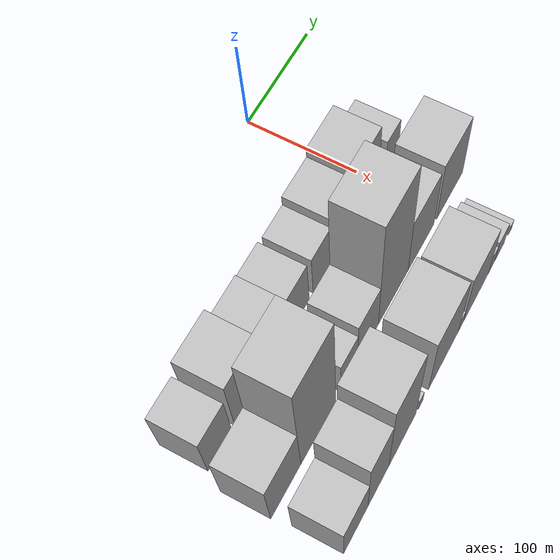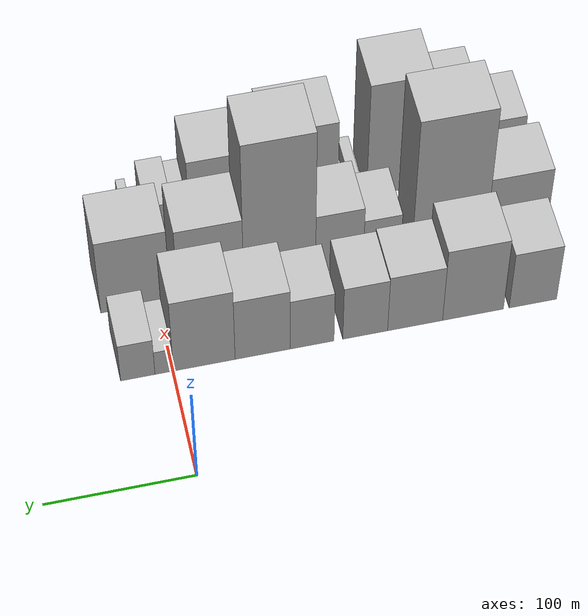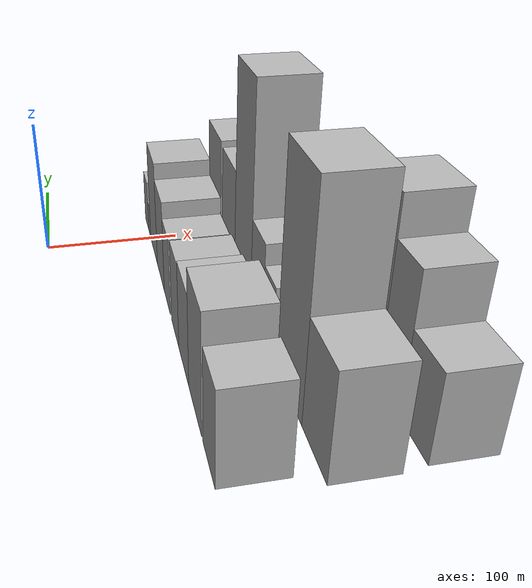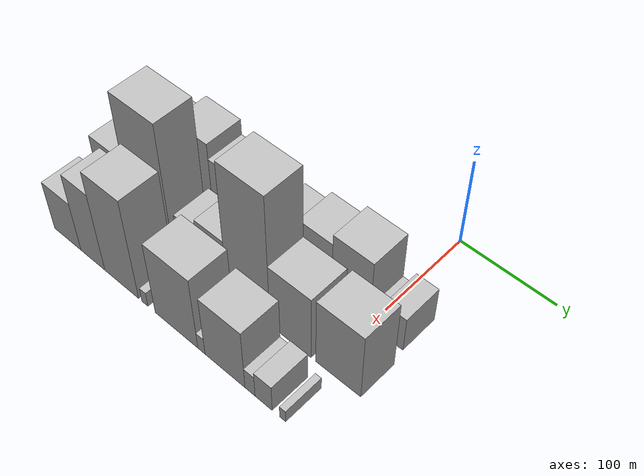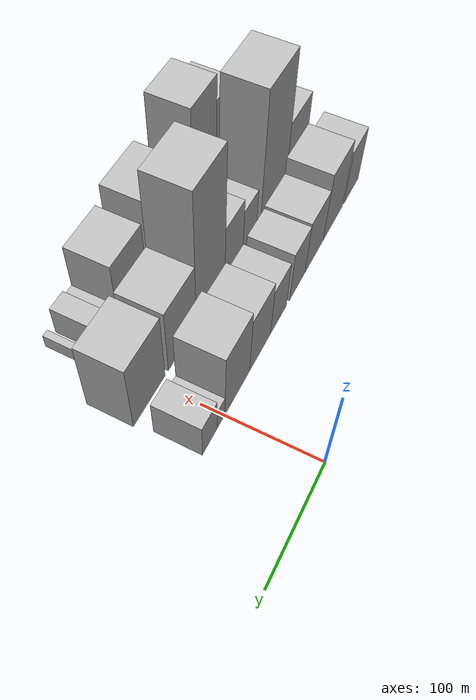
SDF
<sdf version="1.6">
 <world name="default">
  <model name="building_9">
   <static>1</static>
   <pose>100.0000 -245.4455 0 0.000000 0.000000 0.000000</pose>
   <link name="link">
    <pose>0 0 31.50 0 0 0</pose>
    <collision name="collision"><geometry><box><size>40.0000 32.9055 63.0000</size></box></geometry></collision>
    <visual name="visual">
     <cast_shadows>0</cast_shadows>
     <geometry><box><size>40.0000 32.9055 63.0000</size></box></geometry>
     <material>
      <script>
       <uri>model://HANNAS_wall/materials/scripts</uri>
       <uri>model://HANNAS_wall/materials/textures</uri>
       <name>vrc/HANNAS_wall</name>
      </script>
     </material>
    </visual>
   </link>
  </model>
  <model name="building_10">
   <static>1</static>
   <pose>100.0000 -203.9878 0 0.000000 0.000000 0.000000</pose>
   <link name="link">
    <pose>0 0 40.50 0 0 0</pose>
    <collision name="collision"><geometry><box><size>40.0000 42.0099 81.0000</size></box></geometry></collision>
    <visual name="visual">
     <cast_shadows>0</cast_shadows>
     <geometry><box><size>40.0000 42.0099 81.0000</size></box></geometry>
     <material>
      <script>
       <uri>model://HANNAS_wall/materials/scripts</uri>
       <uri>model://HANNAS_wall/materials/textures</uri>
       <name>vrc/HANNAS_wall</name>
      </script>
     </material>
    </visual>
   </link>
  </model>
  <model name="building_11">
   <static>1</static>
   <pose>100.0000 -164.1223 0 0.000000 0.000000 0.000000</pose>
   <link name="link">
    <pose>0 0 31.50 0 0 0</pose>
    <collision name="collision"><geometry><box><size>40.0000 37.7210 63.0000</size></box></geometry></collision>
    <visual name="visual">
     <cast_shadows>0</cast_shadows>
     <geometry><box><size>40.0000 37.7210 63.0000</size></box></geometry>
     <material>
      <script>
       <uri>model://HANNAS_wall/materials/scripts</uri>
       <uri>model://HANNAS_wall/materials/textures</uri>
       <name>vrc/HANNAS_wall</name>
      </script>
     </material>
    </visual>
   </link>
  </model>
  <model name="building_12">
   <static>1</static>
   <pose>100.0000 -129.9413 0 0.000000 0.000000 0.000000</pose>
   <link name="link">
    <pose>0 0 30.00 0 0 0</pose>
    <collision name="collision"><geometry><box><size>40.0000 30.6410 60.0000</size></box></geometry></collision>
    <visual name="visual">
     <cast_shadows>0</cast_shadows>
     <geometry><box><size>40.0000 30.6410 60.0000</size></box></geometry>
     <material>
      <script>
       <uri>model://HANNAS_wall/materials/scripts</uri>
       <uri>model://HANNAS_wall/materials/textures</uri>
       <name>vrc/HANNAS_wall</name>
      </script>
     </material>
    </visual>
   </link>
  </model>
  <model name="building_13">
   <static>1</static>
   <pose>100.0000 -93.8213 0 0.000000 0.000000 0.000000</pose>
   <link name="link">
    <pose>0 0 28.50 0 0 0</pose>
    <collision name="collision"><geometry><box><size>40.0000 29.5989 57.0000</size></box></geometry></collision>
    <visual name="visual">
     <cast_shadows>0</cast_shadows>
     <geometry><box><size>40.0000 29.5989 57.0000</size></box></geometry>
     <material>
      <script>
       <uri>model://HANNAS_wall/materials/scripts</uri>
       <uri>model://HANNAS_wall/materials/textures</uri>
       <name>vrc/HANNAS_wall</name>
      </script>
     </material>
    </visual>
   </link>
  </model>
  <model name="building_14">
   <static>1</static>
   <pose>100.0000 -60.3481 0 0.000000 0.000000 0.000000</pose>
   <link name="link">
    <pose>0 0 34.50 0 0 0</pose>
    <collision name="collision"><geometry><box><size>40.0000 37.3476 69.0000</size></box></geometry></collision>
    <visual name="visual">
     <cast_shadows>0</cast_shadows>
     <geometry><box><size>40.0000 37.3476 69.0000</size></box></geometry>
     <material>
      <script>
       <uri>model://HANNAS_wall/materials/scripts</uri>
       <uri>model://HANNAS_wall/materials/textures</uri>
       <name>vrc/HANNAS_wall</name>
      </script>
     </material>
    </visual>
   </link>
  </model>
  <model name="building_15">
   <static>1</static>
   <pose>100.0000 -20.8964 0 0.000000 0.000000 0.000000</pose>
   <link name="link">
    <pose>0 0 40.50 0 0 0</pose>
    <collision name="collision"><geometry><box><size>40.0000 41.5558 81.0000</size></box></geometry></collision>
    <visual name="visual">
     <cast_shadows>0</cast_shadows>
     <geometry><box><size>40.0000 41.5558 81.0000</size></box></geometry>
     <material>
      <script>
       <uri>model://HANNAS_wall/materials/scripts</uri>
       <uri>model://HANNAS_wall/materials/textures</uri>
       <name>vrc/HANNAS_wall</name>
      </script>
     </material>
    </visual>
   </link>
  </model>
  <model name="building_16">
   <static>1</static>
   <pose>100.0000 6.0256 0 0.000000 0.000000 0.000000</pose>
   <link name="link">
    <pose>0 0 13.50 0 0 0</pose>
    <collision name="collision"><geometry><box><size>40.0000 12.2881 27.0000</size></box></geometry></collision>
    <visual name="visual">
     <cast_shadows>0</cast_shadows>
     <geometry><box><size>40.0000 12.2881 27.0000</size></box></geometry>
     <material>
      <script>
       <uri>model://HANNAS_wall/materials/scripts</uri>
       <uri>model://HANNAS_wall/materials/textures</uri>
       <name>vrc/HANNAS_wall</name>
      </script>
     </material>
    </visual>
   </link>
  </model>
  <model name="building_17">
   <static>1</static>
   <pose>100.0000 23.6727 0 0.000000 0.000000 0.000000</pose>
   <link name="link">
    <pose>0 0 21.00 0 0 0</pose>
    <collision name="collision"><geometry><box><size>40.0000 23.0060 42.0000</size></box></geometry></collision>
    <visual name="visual">
     <cast_shadows>0</cast_shadows>
     <geometry><box><size>40.0000 23.0060 42.0000</size></box></geometry>
     <material>
      <script>
       <uri>model://HANNAS_wall/materials/scripts</uri>
       <uri>model://HANNAS_wall/materials/textures</uri>
       <name>vrc/HANNAS_wall</name>
      </script>
     </material>
    </visual>
   </link>
  </model>
  <model name="building_46">
   <static>1</static>
   <pose>155.0000 -248.7968 0 0.000000 0.000000 0.000000</pose>
   <link name="link">
    <pose>0 0 36.00 0 0 0</pose>
    <collision name="collision"><geometry><box><size>40.0000 42.7778 72.0000</size></box></geometry></collision>
    <visual name="visual">
     <cast_shadows>0</cast_shadows>
     <geometry><box><size>40.0000 42.7778 72.0000</size></box></geometry>
     <material>
      <script>
       <uri>model://HANNAS_wall/materials/scripts</uri>
       <uri>model://HANNAS_wall/materials/textures</uri>
       <name>vrc/HANNAS_wall</name>
      </script>
     </material>
    </visual>
   </link>
  </model>
  <model name="building_47">
   <static>1</static>
   <pose>155.0000 -201.4430 0 0.000000 0.000000 0.000000</pose>
   <link name="link">
    <pose>0 0 75.00 0 0 0</pose>
    <collision name="collision"><geometry><box><size>40.0000 51.9298 150.0000</size></box></geometry></collision>
    <visual name="visual">
     <cast_shadows>0</cast_shadows>
     <geometry><box><size>40.0000 51.9298 150.0000</size></box></geometry>
     <material>
      <script>
       <uri>model://HANNAS_wall/materials/scripts</uri>
       <uri>model://HANNAS_wall/materials/textures</uri>
       <name>vrc/HANNAS_wall</name>
      </script>
     </material>
    </visual>
   </link>
  </model>
  <model name="building_48">
   <static>1</static>
   <pose>155.0000 -154.5141 0 0.000000 0.000000 0.000000</pose>
   <link name="link">
    <pose>0 0 25.50 0 0 0</pose>
    <collision name="collision"><geometry><box><size>40.0000 25.9280 51.0000</size></box></geometry></collision>
    <visual name="visual">
     <cast_shadows>0</cast_shadows>
     <geometry><box><size>40.0000 25.9280 51.0000</size></box></geometry>
     <material>
      <script>
       <uri>model://HANNAS_wall/materials/scripts</uri>
       <uri>model://HANNAS_wall/materials/textures</uri>
       <name>vrc/HANNAS_wall</name>
      </script>
     </material>
    </visual>
   </link>
  </model>
  <model name="building_49">
   <static>1</static>
   <pose>155.0000 -125.0079 0 0.000000 0.000000 0.000000</pose>
   <link name="link">
    <pose>0 0 33.00 0 0 0</pose>
    <collision name="collision"><geometry><box><size>40.0000 33.0843 66.0000</size></box></geometry></collision>
    <visual name="visual">
     <cast_shadows>0</cast_shadows>
     <geometry><box><size>40.0000 33.0843 66.0000</size></box></geometry>
     <material>
      <script>
       <uri>model://HANNAS_wall/materials/scripts</uri>
       <uri>model://HANNAS_wall/materials/textures</uri>
       <name>vrc/HANNAS_wall</name>
      </script>
     </material>
    </visual>
   </link>
  </model>
  <model name="building_50">
   <static>1</static>
   <pose>155.0000 -83.7660 0 0.000000 0.000000 0.000000</pose>
   <link name="link">
    <pose>0 0 79.50 0 0 0</pose>
    <collision name="collision"><geometry><box><size>40.0000 49.3995 159.0000</size></box></geometry></collision>
    <visual name="visual">
     <cast_shadows>0</cast_shadows>
     <geometry><box><size>40.0000 49.3995 159.0000</size></box></geometry>
     <material>
      <script>
       <uri>model://HANNAS_wall/materials/scripts</uri>
       <uri>model://HANNAS_wall/materials/textures</uri>
       <name>vrc/HANNAS_wall</name>
      </script>
     </material>
    </visual>
   </link>
  </model>
  <model name="building_51">
   <static>1</static>
   <pose>155.0000 -36.3835 0 0.000000 0.000000 0.000000</pose>
   <link name="link">
    <pose>0 0 39.00 0 0 0</pose>
    <collision name="collision"><geometry><box><size>40.0000 45.3655 78.0000</size></box></geometry></collision>
    <visual name="visual">
     <cast_shadows>0</cast_shadows>
     <geometry><box><size>40.0000 45.3655 78.0000</size></box></geometry>
     <material>
      <script>
       <uri>model://HANNAS_wall/materials/scripts</uri>
       <uri>model://HANNAS_wall/materials/textures</uri>
       <name>vrc/HANNAS_wall</name>
      </script>
     </material>
    </visual>
   </link>
  </model>
  <model name="building_52">
   <static>1</static>
   <pose>155.0000 14.9629 0 0.000000 0.000000 0.000000</pose>
   <link name="link">
    <pose>0 0 40.50 0 0 0</pose>
    <collision name="collision"><geometry><box><size>40.0000 47.3273 81.0000</size></box></geometry></collision>
    <visual name="visual">
     <cast_shadows>0</cast_shadows>
     <geometry><box><size>40.0000 47.3273 81.0000</size></box></geometry>
     <material>
      <script>
       <uri>model://HANNAS_wall/materials/scripts</uri>
       <uri>model://HANNAS_wall/materials/textures</uri>
       <name>vrc/HANNAS_wall</name>
      </script>
     </material>
    </visual>
   </link>
  </model>
  <model name="building_77">
   <static>1</static>
   <pose>210.0000 -249.5844 0 0.000000 0.000000 0.000000</pose>
   <link name="link">
    <pose>0 0 30.00 0 0 0</pose>
    <collision name="collision"><geometry><box><size>40.0000 35.8169 60.0000</size></box></geometry></collision>
    <visual name="visual">
     <cast_shadows>0</cast_shadows>
     <geometry><box><size>40.0000 35.8169 60.0000</size></box></geometry>
     <material>
      <script>
       <uri>model://HANNAS_wall/materials/scripts</uri>
       <uri>model://HANNAS_wall/materials/textures</uri>
       <name>vrc/HANNAS_wall</name>
      </script>
     </material>
    </visual>
   </link>
  </model>
  <model name="building_78">
   <static>1</static>
   <pose>210.0000 -215.9124 0 0.000000 0.000000 0.000000</pose>
   <link name="link">
    <pose>0 0 48.00 0 0 0</pose>
    <collision name="collision"><geometry><box><size>40.0000 31.5271 96.0000</size></box></geometry></collision>
    <visual name="visual">
     <cast_shadows>0</cast_shadows>
     <geometry><box><size>40.0000 31.5271 96.0000</size></box></geometry>
     <material>
      <script>
       <uri>model://HANNAS_wall/materials/scripts</uri>
       <uri>model://HANNAS_wall/materials/textures</uri>
       <name>vrc/HANNAS_wall</name>
      </script>
     </material>
    </visual>
   </link>
  </model>
  <model name="building_79">
   <static>1</static>
   <pose>210.0000 -178.6204 0 0.000000 0.000000 0.000000</pose>
   <link name="link">
    <pose>0 0 61.50 0 0 0</pose>
    <collision name="collision"><geometry><box><size>40.0000 43.0570 123.0000</size></box></geometry></collision>
    <visual name="visual">
     <cast_shadows>0</cast_shadows>
     <geometry><box><size>40.0000 43.0570 123.0000</size></box></geometry>
     <material>
      <script>
       <uri>model://HANNAS_wall/materials/scripts</uri>
       <uri>model://HANNAS_wall/materials/textures</uri>
       <name>vrc/HANNAS_wall</name>
      </script>
     </material>
    </visual>
   </link>
  </model>
  <model name="building_80">
   <static>1</static>
   <pose>210.0000 -149.3217 0 0.000000 0.000000 0.000000</pose>
   <link name="link">
    <pose>0 0 9.00 0 0 0</pose>
    <collision name="collision"><geometry><box><size>40.0000 7.5404 18.0000</size></box></geometry></collision>
    <visual name="visual">
     <cast_shadows>0</cast_shadows>
     <geometry><box><size>40.0000 7.5404 18.0000</size></box></geometry>
     <material>
      <script>
       <uri>model://HANNAS_wall/materials/scripts</uri>
       <uri>model://HANNAS_wall/materials/textures</uri>
       <name>vrc/HANNAS_wall</name>
      </script>
     </material>
    </visual>
   </link>
  </model>
  <model name="building_81">
   <static>1</static>
   <pose>210.0000 -111.2020 0 0.000000 0.000000 0.000000</pose>
   <link name="link">
    <pose>0 0 45.00 0 0 0</pose>
    <collision name="collision"><geometry><box><size>40.0000 50.6991 90.0000</size></box></geometry></collision>
    <visual name="visual">
     <cast_shadows>0</cast_shadows>
     <geometry><box><size>40.0000 50.6991 90.0000</size></box></geometry>
     <material>
      <script>
       <uri>model://HANNAS_wall/materials/scripts</uri>
       <uri>model://HANNAS_wall/materials/textures</uri>
       <name>vrc/HANNAS_wall</name>
      </script>
     </material>
    </visual>
   </link>
  </model>
  <model name="building_82">
   <static>1</static>
   <pose>210.0000 -81.6514 0 0.000000 0.000000 0.000000</pose>
   <link name="link">
    <pose>0 0 10.50 0 0 0</pose>
    <collision name="collision"><geometry><box><size>40.0000 8.4020 21.0000</size></box></geometry></collision>
    <visual name="visual">
     <cast_shadows>0</cast_shadows>
     <geometry><box><size>40.0000 8.4020 21.0000</size></box></geometry>
     <material>
      <script>
       <uri>model://HANNAS_wall/materials/scripts</uri>
       <uri>model://HANNAS_wall/materials/textures</uri>
       <name>vrc/HANNAS_wall</name>
      </script>
     </material>
    </visual>
   </link>
  </model>
  <model name="building_83">
   <static>1</static>
   <pose>210.0000 -55.0487 0 0.000000 0.000000 0.000000</pose>
   <link name="link">
    <pose>0 0 37.50 0 0 0</pose>
    <collision name="collision"><geometry><box><size>40.0000 44.8033 75.0000</size></box></geometry></collision>
    <visual name="visual">
     <cast_shadows>0</cast_shadows>
     <geometry><box><size>40.0000 44.8033 75.0000</size></box></geometry>
     <material>
      <script>
       <uri>model://HANNAS_wall/materials/scripts</uri>
       <uri>model://HANNAS_wall/materials/textures</uri>
       <name>vrc/HANNAS_wall</name>
      </script>
     </material>
    </visual>
   </link>
  </model>
  <model name="building_84">
   <static>1</static>
   <pose>210.0000 -27.1584 0 0.000000 0.000000 0.000000</pose>
   <link name="link">
    <pose>0 0 13.50 0 0 0</pose>
    <collision name="collision"><geometry><box><size>40.0000 10.9774 27.0000</size></box></geometry></collision>
    <visual name="visual">
     <cast_shadows>0</cast_shadows>
     <geometry><box><size>40.0000 10.9774 27.0000</size></box></geometry>
     <material>
      <script>
       <uri>model://HANNAS_wall/materials/scripts</uri>
       <uri>model://HANNAS_wall/materials/textures</uri>
       <name>vrc/HANNAS_wall</name>
      </script>
     </material>
    </visual>
   </link>
  </model>
  <model name="building_85">
   <static>1</static>
   <pose>210.0000 -12.4625 0 0.000000 0.000000 0.000000</pose>
   <link name="link">
    <pose>0 0 16.50 0 0 0</pose>
    <collision name="collision"><geometry><box><size>40.0000 18.4143 33.0000</size></box></geometry></collision>
    <visual name="visual">
     <cast_shadows>0</cast_shadows>
     <geometry><box><size>40.0000 18.4143 33.0000</size></box></geometry>
     <material>
      <script>
       <uri>model://HANNAS_wall/materials/scripts</uri>
       <uri>model://HANNAS_wall/materials/textures</uri>
       <name>vrc/HANNAS_wall</name>
      </script>
     </material>
    </visual>
   </link>
  </model>
  <model name="building_86">
   <static>1</static>
   <pose>210.0000 7.9236 0 0.000000 0.000000 0.000000</pose>
   <link name="link">
    <pose>0 0 7.50 0 0 0</pose>
    <collision name="collision"><geometry><box><size>40.0000 6.3581 15.0000</size></box></geometry></collision>
    <visual name="visual">
     <cast_shadows>0</cast_shadows>
     <geometry><box><size>40.0000 6.3581 15.0000</size></box></geometry>
     <material>
      <script>
       <uri>model://HANNAS_wall/materials/scripts</uri>
       <uri>model://HANNAS_wall/materials/textures</uri>
       <name>vrc/HANNAS_wall</name>
      </script>
     </material>
    </visual>
   </link>
  </model>
 </world>
</sdf>
